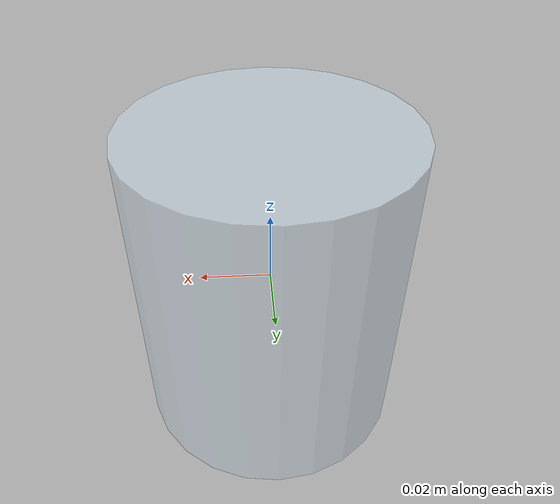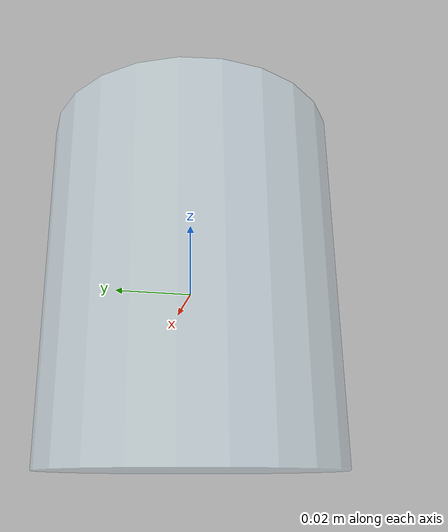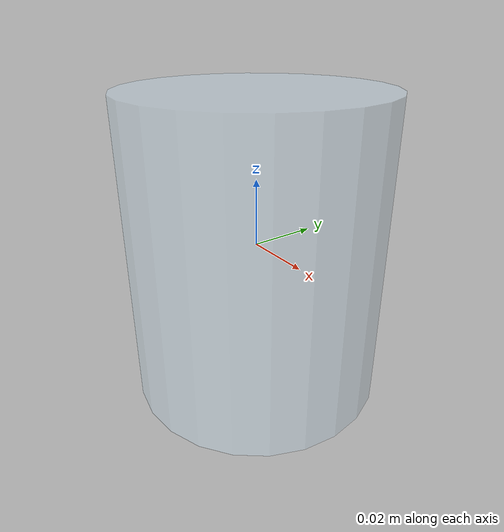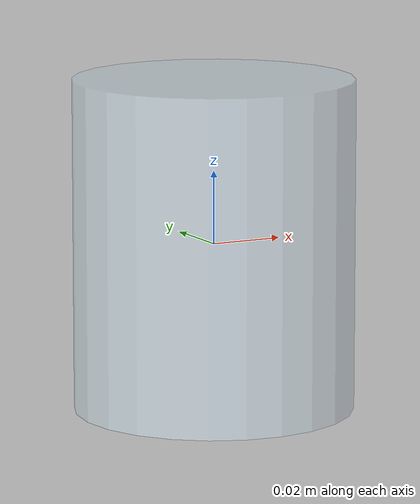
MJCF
<mujoco model="glass_cup">
  <asset>
    <!-- Semi-transparent blue-white: conveys "glass / fragile" to a VLM -->
    <material name="glass_mat"
              rgba="0.82 0.93 1.00 0.38"
              reflectance="0.92"
              specular="1.0"
              shininess="1.0"/>
  </asset>
  <worldbody>
    <body>
      <body name="object">
        <!-- Visual: semi-transparent glass cylinder (no collision) -->
        <geom type="cylinder" size="0.038 0.045" pos="0 0 0"
              contype="0" conaffinity="0" group="1"
              material="glass_mat"
              solimp="0.998 0.998 0.001" solref="0.001 1"/>
        <!-- Collision: opaque cylinder approximating the glass shell -->
        <geom type="cylinder" size="0.038 0.045" pos="0 0 0"
              density="80" friction="0.95 0.3 0.1"
              group="0" rgba="0.8 0.8 0.8 0.3"
              solimp="0.998 0.998 0.001" solref="0.001 1"/>
      </body>
      <!-- Required LIBERO sites: bottom / top / horizontal_radius -->
      <site rgba="0 0 0 0" size="0.005" pos="0 0 -0.045" name="bottom_site"/>
      <site rgba="0 0 0 0" size="0.005" pos="0 0  0.045" name="top_site"/>
      <site rgba="0 0 0 0" size="0.005" pos="0.027 0.027 0" name="horizontal_radius_site"/>
    </body>
  </worldbody>
</mujoco>
